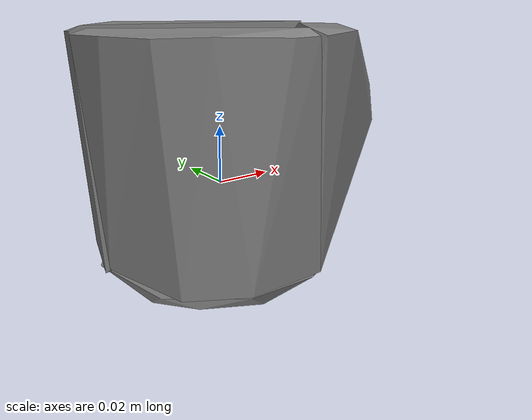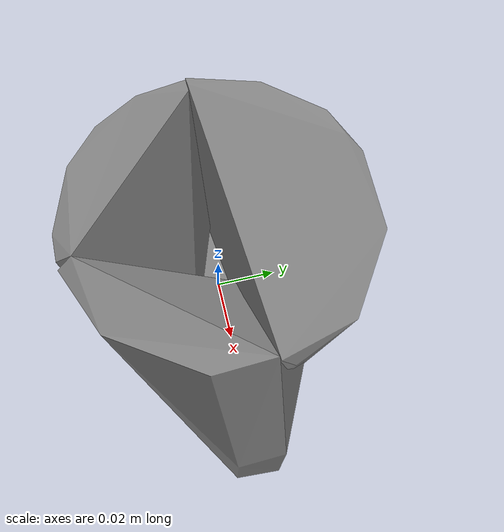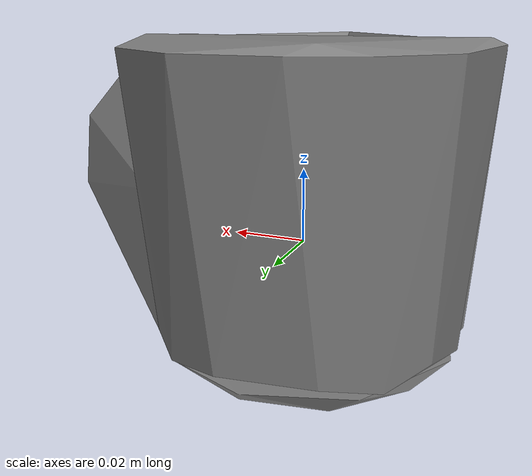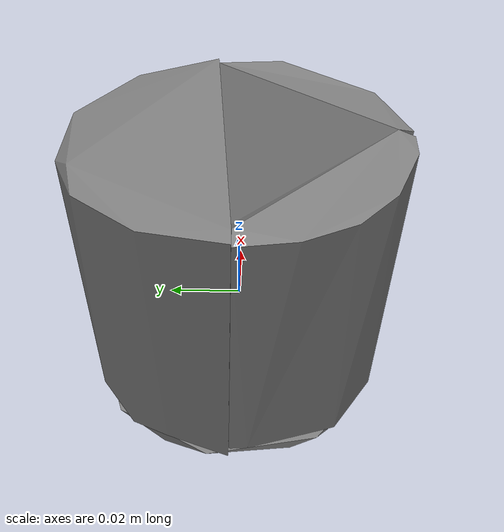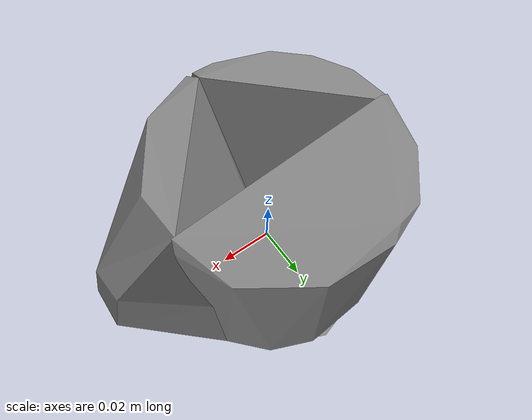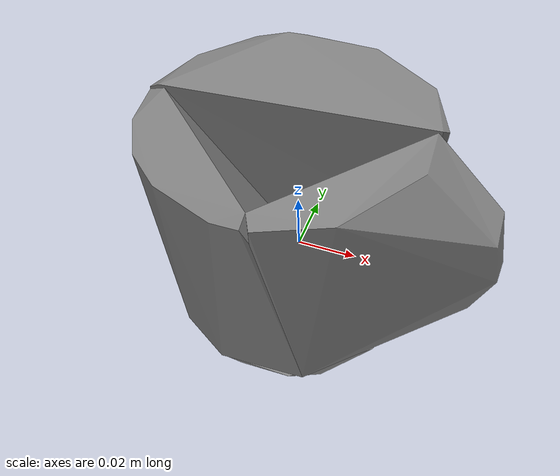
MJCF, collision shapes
<mujoco model="mug">
  <compiler angle="radian" />

  <asset>
    <mesh name="mug_visual_mesh" file="mug/textured.obj" />
    <mesh name="mug_collision_mesh_0" file="mug/textured_coacd_0.stl" />
    <mesh name="mug_collision_mesh_1" file="mug/textured_coacd_1.stl" />
    <mesh name="mug_collision_mesh_2" file="mug/textured_coacd_2.stl" />
    <mesh name="mug_collision_mesh_3" file="mug/textured_coacd_3.stl" />
    <texture name="mug_texture" type="2d" file="mug/texture_map.png" />
    <material name="mug_material" texture="mug_texture" />
  </asset>

  <worldbody>
    <body name="mug" pos="0 0 0" euler="0 0 0">
      <freejoint name="mug_joint" />
      <geom name="mug_visual_geom" type="mesh" mesh="mug_visual_mesh" material="mug_material" pos="0.018858606464151616 -0.01657296231165061 -0.026898852026976835" euler="0 0 0" contype="0" conaffinity="0" group="0" />
      <geom name="mug_collision_geom_0" type="mesh" mesh="mug_collision_mesh_0" pos="0.018858606464151616 -0.01657296231165061 -0.026898852026976835" euler="0 0 0" contype="1" conaffinity="1" group="3" />
      <geom name="mug_collision_geom_1" type="mesh" mesh="mug_collision_mesh_1" pos="0.018858606464151616 -0.01657296231165061 -0.026898852026976835" euler="0 0 0" contype="1" conaffinity="1" group="3" />
      <geom name="mug_collision_geom_2" type="mesh" mesh="mug_collision_mesh_2" pos="0.018858606464151616 -0.01657296231165061 -0.026898852026976835" euler="0 0 0" contype="1" conaffinity="1" group="3" />
      <geom name="mug_collision_geom_3" type="mesh" mesh="mug_collision_mesh_3" pos="0.018858606464151616 -0.01657296231165061 -0.026898852026976835" euler="0 0 0" contype="1" conaffinity="1" group="3" />
      <inertial pos="0 0 0" euler="0 0 0" mass="0.118" diaginertia="0.001 0.001 0.001" />
    </body>
  </worldbody>
</mujoco>
